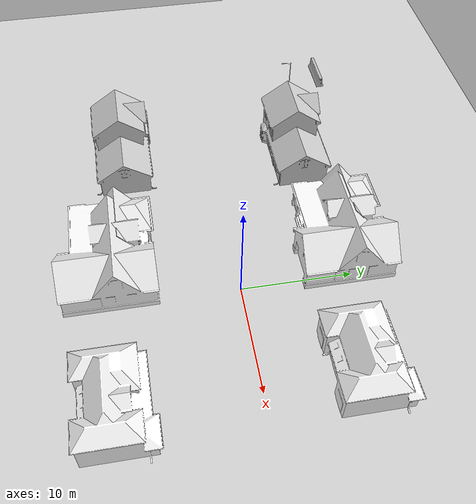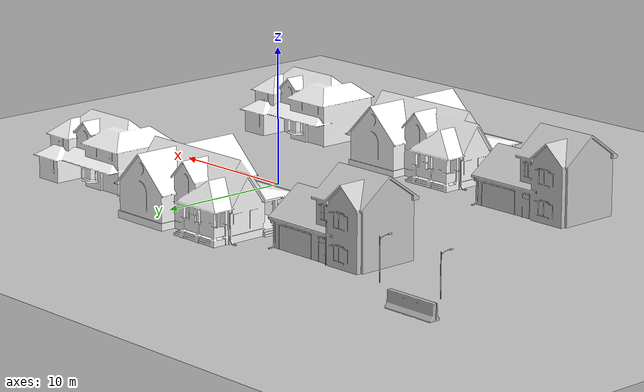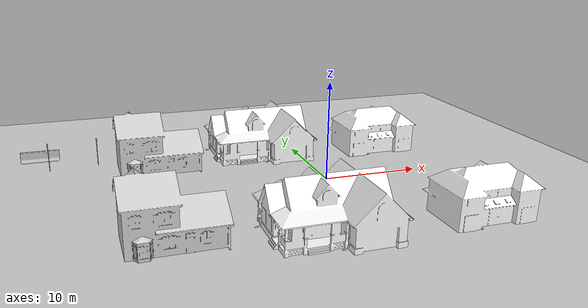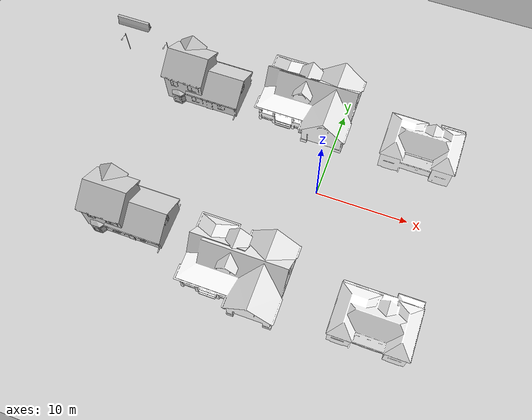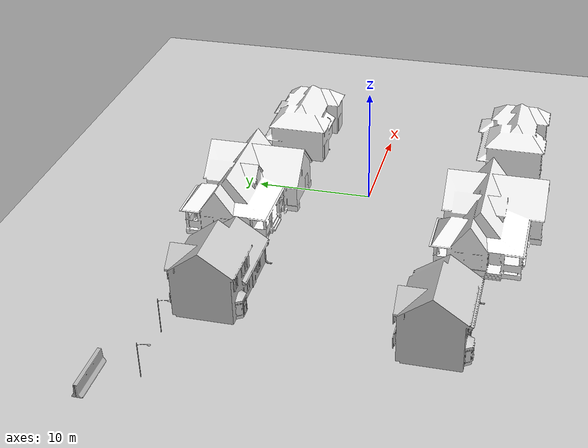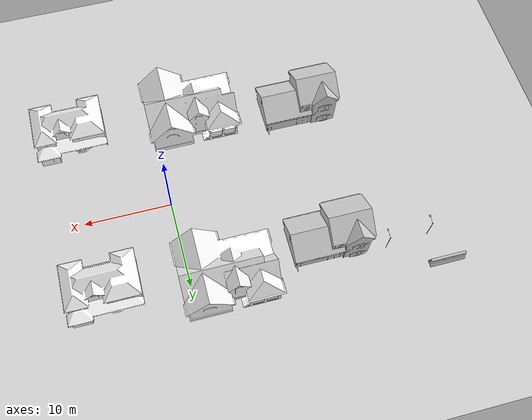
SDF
<sdf version="1.4">
 <world name="default">
  <light name="sun" type="directional">
   <pose>0 0 10 0 -0 0</pose>
   <diffuse>0.8 0.8 0.8 1</diffuse>
   <specular>0.2 0.2 0.2 1</specular>
   <attenuation>
    <range>1000</range>
    <constant>0.9</constant>
    <linear>0.01</linear>
    <quadratic>0.001</quadratic>
   </attenuation>
   <direction>-0.5 0.1 -0.9</direction>
  </light>
  <model name="ground_plane">
   <static>1</static>
   <link name="link">
    <collision name="collision">
     <geometry><plane><normal>0 0 1</normal><size>100 100</size></plane></geometry>
     <surface><friction><ode><mu>100</mu><mu2>50</mu2></ode></friction></surface>
    </collision>
    <visual name="visual">
     <cast_shadows>0</cast_shadows>
     <geometry><plane><normal>0 0 1</normal><size>100 100</size></plane></geometry>
     <material>
      <script><uri>file://media/materials/scripts/gazebo.material</uri><name>Gazebo/Grey</name></script>
     </material>
    </visual>
    <velocity_decay><linear>0</linear><angular>0</angular></velocity_decay>
   </link>
  </model>
  <physics type="ode">
   <max_step_size>0.01</max_step_size>
   <real_time_factor>1</real_time_factor>
   <real_time_update_rate>100</real_time_update_rate>
   <gravity>0 0 -9.8</gravity>
  </physics>
  <scene><ambient>0.4 0.4 0.4 1</ambient><background>0.7 0.7 0.7 1</background><shadows>1</shadows></scene>
  <spherical_coordinates>
   <surface_model>EARTH_WGS84</surface_model>
   <latitude_deg>0</latitude_deg>
   <longitude_deg>0</longitude_deg>
   <elevation>0</elevation>
   <heading_deg>0</heading_deg>
  </spherical_coordinates>
  <model name="jersey_barrier_16">
   <static>1</static>
   <link name="link">
    <visual name="visual">
     <geometry><mesh><uri>model://jersey_barrier/meshes/jersey_barrier.dae</uri></mesh></geometry>
    </visual>
    <collision name="upright">
     <pose>0 0 0.5715 0 -0 0</pose>
     <geometry><box><size>4.06542 0.3063 1.143</size></box></geometry>
    </collision>
    <collision name="base">
     <pose>0 0 0.032258 0 -0 0</pose>
     <geometry><box><size>4.06542 0.8107 0.064516</size></box></geometry>
    </collision>
    <collision name="base2">
     <pose>0 0 0.1 0 -0 0</pose>
     <geometry><box><size>4.06542 0.65 0.1</size></box></geometry>
    </collision>
    <collision name="base3">
     <pose>0 0 0.2 0 -0 0</pose>
     <geometry><box><size>4.06542 0.5 0.1</size></box></geometry>
    </collision>
    <collision name="left-angle">
     <pose>0 -0.224 0.2401 0.9 -0 0</pose>
     <geometry><box><size>4.06542 0.5 0.064516</size></box></geometry>
    </collision>
    <collision name="right-angle">
     <pose>0 0.224 0.2401 -0.9 0 0</pose>
     <geometry><box><size>4.06542 0.5 0.064516</size></box></geometry>
    </collision>
    <velocity_decay><linear>0</linear><angular>0</angular></velocity_decay>
   </link>
   <pose>-28 14 0 0 -0 0</pose>
  </model>
  <model name="Lamp Post">
   <static>1</static>
   <link name="link">
    <collision name="collision">
     <geometry><mesh><uri>model://lamp_post/meshes/lamp_post.dae</uri></mesh></geometry>
    </collision>
    <visual name="visual">
     <geometry><mesh><uri>model://lamp_post/meshes/lamp_post.dae</uri></mesh></geometry>
    </visual>
    <velocity_decay><linear>0</linear><angular>0</angular></velocity_decay>
   </link>
   <pose>-27 10.5651 0 0 -0 0</pose>
  </model>
  <model name="Lamp Post_0">
   <static>1</static>
   <link name="link">
    <collision name="collision">
     <geometry><mesh><uri>model://lamp_post/meshes/lamp_post.dae</uri></mesh></geometry>
    </collision>
    <visual name="visual">
     <geometry><mesh><uri>model://lamp_post/meshes/lamp_post.dae</uri></mesh></geometry>
    </visual>
    <velocity_decay><linear>0</linear><angular>0</angular></velocity_decay>
   </link>
   <pose>-22 11 0 0 -0 0</pose>
  </model>
  <model name="Lamp Post_1">
   <static>1</static>
   <link name="link">
    <collision name="collision">
     <geometry><mesh><uri>model://lamp_post/meshes/lamp_post.dae</uri></mesh></geometry>
    </collision>
    <visual name="visual">
     <geometry><mesh><uri>model://lamp_post/meshes/lamp_post.dae</uri></mesh></geometry>
    </visual>
    <velocity_decay><linear>0</linear><angular>0</angular></velocity_decay>
   </link>
   <pose>-17 11 0 0 -0 0</pose>
  </model>
  <model name="House 1">
   <static>1</static>
   <link name="link">
    <collision name="collision">
     <geometry><mesh><uri>model://house_1/meshes/house_1.dae</uri></mesh></geometry>
    </collision>
    <visual name="visual">
     <geometry><mesh><uri>model://house_1/meshes/house_1.dae</uri></mesh></geometry>
     <material>
      <script>
       <uri>model://house_1/materials/scripts</uri>
       <uri>model://house_1/materials/textures</uri>
       <name>House_1/Diffuse</name>
      </script>
      <shader type="normal_map_object_space"><normal_map>House_1_Normal.png</normal_map></shader>
     </material>
    </visual>
    <velocity_decay><linear>0</linear><angular>0</angular></velocity_decay>
   </link>
   <pose>-4.54374 -11 0 0 -0 0</pose>
  </model>
  <model name="House 2">
   <static>1</static>
   <link name="link">
    <collision name="collision">
     <geometry><mesh><uri>model://house_2/meshes/house_2.dae</uri></mesh></geometry>
    </collision>
    <visual name="visual">
     <geometry><mesh><uri>model://house_2/meshes/house_2.dae</uri></mesh></geometry>
     <material>
      <script>
       <uri>model://house_2/materials/scripts</uri>
       <uri>model://house_2/materials/textures</uri>
       <uri>model://house_1/materials/textures</uri>
       <name>House_2/Diffuse</name>
      </script>
      <shader type="normal_map_object_space">
       <normal_map>model://house_1/materials/textures/House_1_Normal.png</normal_map>
      </shader>
     </material>
    </visual>
    <velocity_decay><linear>0</linear><angular>0</angular></velocity_decay>
   </link>
   <pose>9 -12 0 0 -0 0</pose>
  </model>
  <model name="House 3">
   <static>1</static>
   <link name="link">
    <collision name="collision">
     <geometry><mesh><uri>model://house_3/meshes/house_3.dae</uri></mesh></geometry>
    </collision>
    <visual name="visual">
     <geometry><mesh><uri>model://house_3/meshes/house_3.dae</uri></mesh></geometry>
     <material>
      <script>
       <uri>model://house_3/materials/scripts</uri>
       <uri>model://house_3/materials/textures</uri>
       <uri>model://house_1/materials/textures</uri>
       <name>House_3/Diffuse</name>
      </script>
      <shader type="normal_map_object_space">
       <normal_map>model://house_1/materials/textures/House_1_Normal.png</normal_map>
      </shader>
     </material>
    </visual>
    <velocity_decay><linear>0</linear><angular>0</angular></velocity_decay>
   </link>
   <pose>-17 -9 0 0 -0 0</pose>
  </model>
  <model name="House 1_0">
   <static>1</static>
   <link name="link">
    <collision name="collision">
     <geometry><mesh><uri>model://house_1/meshes/house_1.dae</uri></mesh></geometry>
    </collision>
    <visual name="visual">
     <geometry><mesh><uri>model://house_1/meshes/house_1.dae</uri></mesh></geometry>
     <material>
      <script>
       <uri>model://house_1/materials/scripts</uri>
       <uri>model://house_1/materials/textures</uri>
       <name>House_1/Diffuse</name>
      </script>
      <shader type="normal_map_object_space"><normal_map>House_1_Normal.png</normal_map></shader>
     </material>
    </visual>
    <velocity_decay><linear>0</linear><angular>0</angular></velocity_decay>
   </link>
   <pose>-4 10 0 0 -0 0</pose>
  </model>
  <model name="House 2_0">
   <static>1</static>
   <link name="link">
    <collision name="collision">
     <geometry><mesh><uri>model://house_2/meshes/house_2.dae</uri></mesh></geometry>
    </collision>
    <visual name="visual">
     <geometry><mesh><uri>model://house_2/meshes/house_2.dae</uri></mesh></geometry>
     <material>
      <script>
       <uri>model://house_2/materials/scripts</uri>
       <uri>model://house_2/materials/textures</uri>
       <uri>model://house_1/materials/textures</uri>
       <name>House_2/Diffuse</name>
      </script>
      <shader type="normal_map_object_space">
       <normal_map>model://house_1/materials/textures/House_1_Normal.png</normal_map>
      </shader>
     </material>
    </visual>
    <velocity_decay><linear>0</linear><angular>0</angular></velocity_decay>
   </link>
   <pose>8.48002 8 0 0 -0 0</pose>
  </model>
  <model name="House 3_0">
   <static>1</static>
   <link name="link">
    <collision name="collision">
     <geometry><mesh><uri>model://house_3/meshes/house_3.dae</uri></mesh></geometry>
    </collision>
    <visual name="visual">
     <geometry><mesh><uri>model://house_3/meshes/house_3.dae</uri></mesh></geometry>
     <material>
      <script>
       <uri>model://house_3/materials/scripts</uri>
       <uri>model://house_3/materials/textures</uri>
       <uri>model://house_1/materials/textures</uri>
       <name>House_3/Diffuse</name>
      </script>
      <shader type="normal_map_object_space">
       <normal_map>model://house_1/materials/textures/House_1_Normal.png</normal_map>
      </shader>
     </material>
    </visual>
    <velocity_decay><linear>0</linear><angular>0</angular></velocity_decay>
   </link>
   <pose>-15.484 8.412 0 0 -0 0</pose>
  </model>
 </world>
</sdf>
